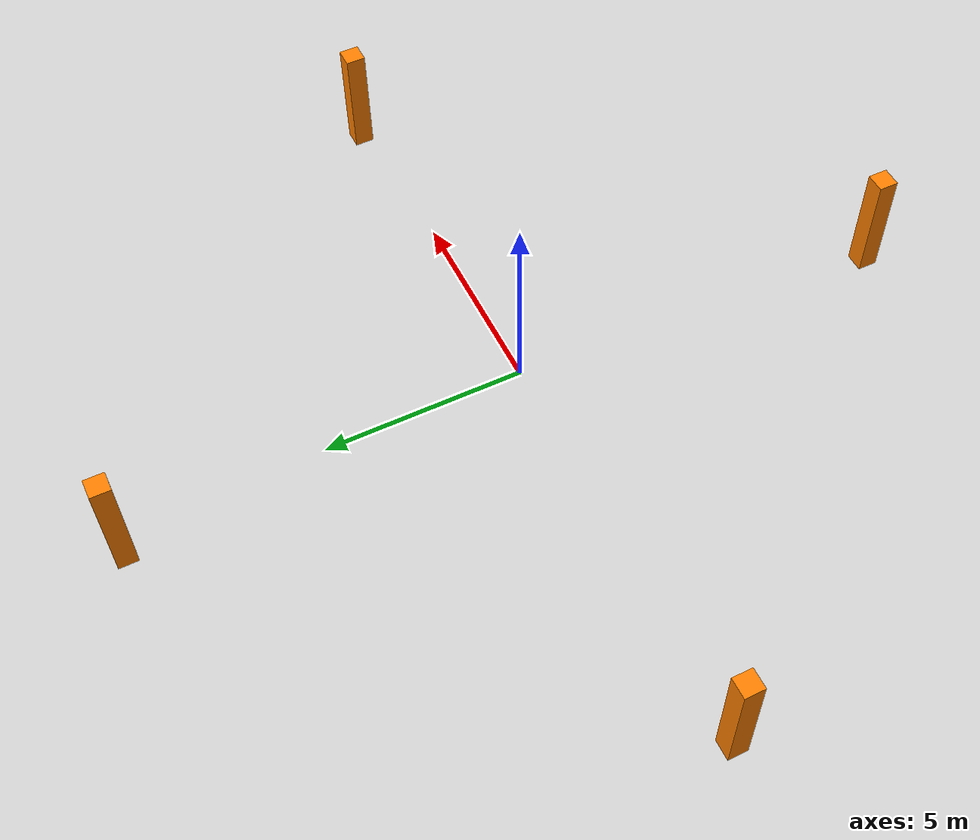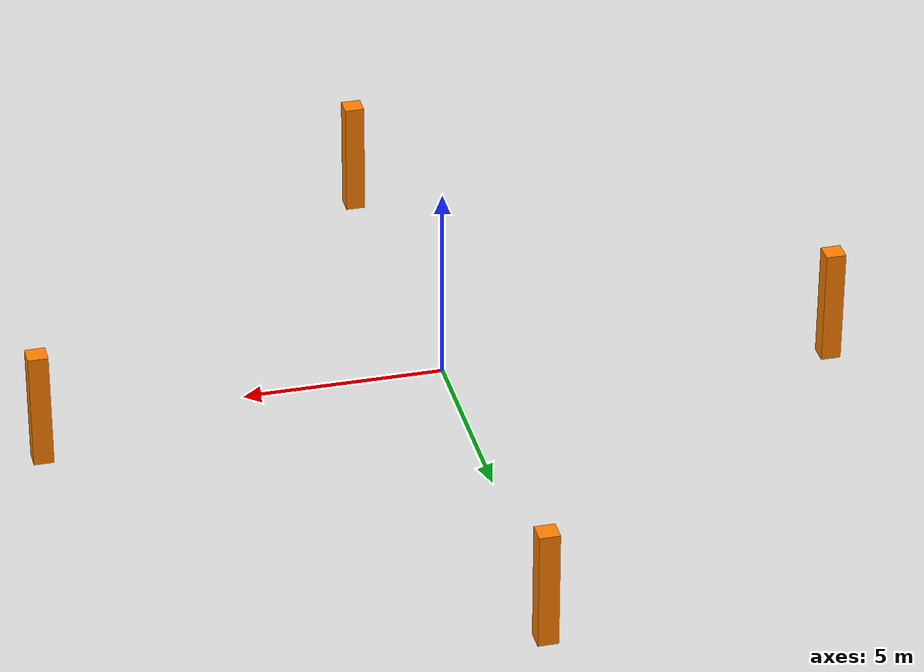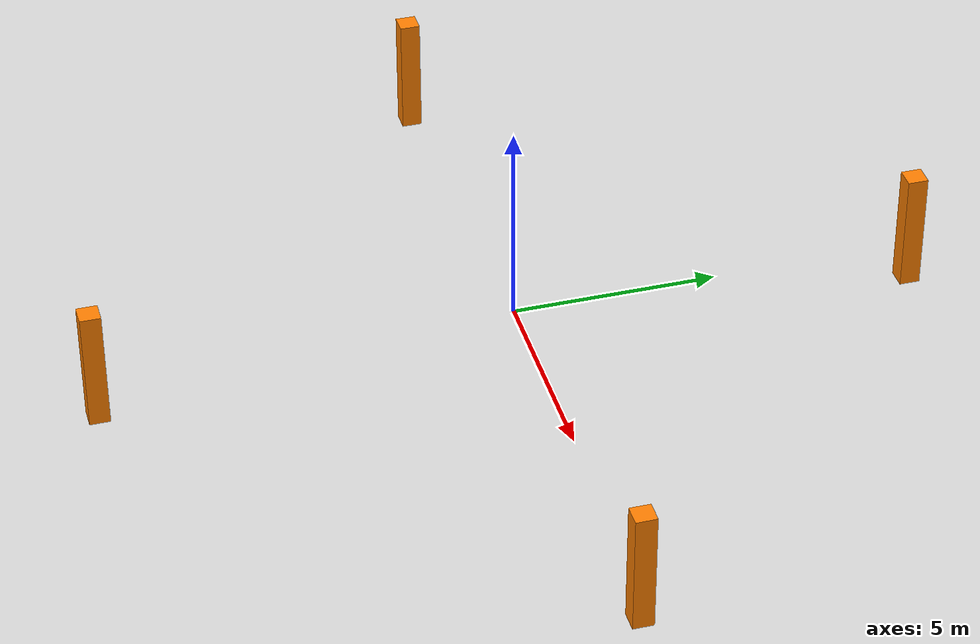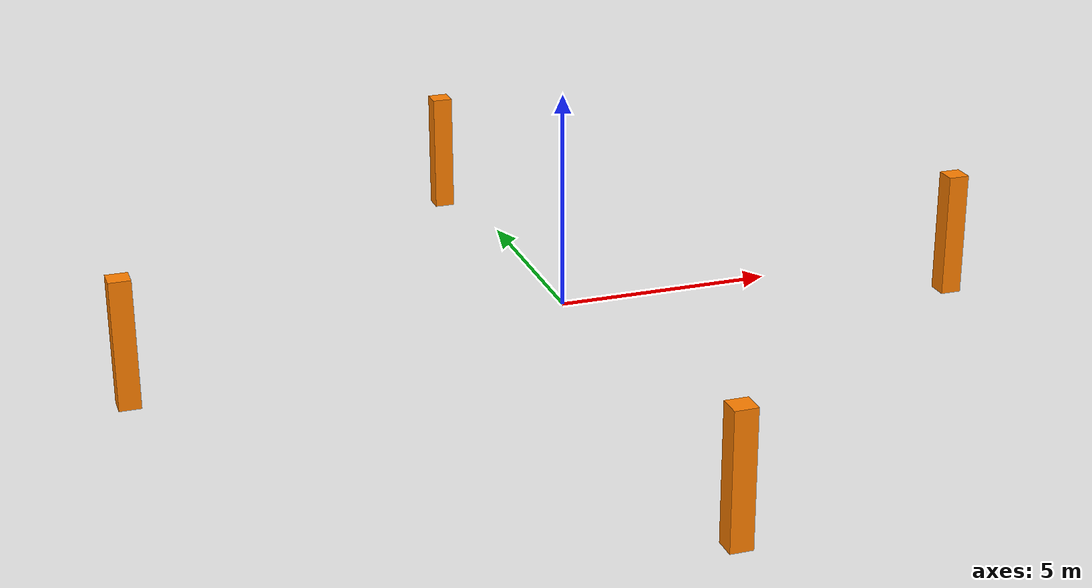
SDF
<sdf version="1.9">
 <world name="baylands">
  <plugin filename="gz-sim-physics-system" name="gz::sim::systems::Physics"/>
  <plugin filename="gz-sim-user-commands-system" name="gz::sim::systems::UserCommands"/>
  <plugin filename="gz-sim-scene-broadcaster-system" name="gz::sim::systems::SceneBroadcaster"/>
  <plugin filename="gz-sim-sensors-system" name="gz::sim::systems::Sensors">
   <render_engine>ogre2</render_engine>
  </plugin>
  <plugin filename="gz-sim-imu-system" name="gz::sim::systems::Imu"/>
  <plugin filename="gz-sim-navsat-system" name="gz::sim::systems::NavSat"/>
  <physics type="ode">
   <max_step_size>0.004</max_step_size>
   <real_time_factor>1.0</real_time_factor>
   <real_time_update_rate>250</real_time_update_rate>
  </physics>
  <gravity>0 0 -9.8</gravity>
  <magnetic_field>6e-06 2.3e-05 -4.2e-05</magnetic_field>
  <atmosphere type="adiabatic"/>
  <scene>
   <ambient>0.8 0.5 1</ambient>
   <grid>false</grid>
   <sky><clouds>true</clouds></sky>
   <shadows>1</shadows>
  </scene>
  <light name="sunUTC" type="directional">
   <pose>0 0 500 0 -0 0</pose>
   <cast_shadows>false</cast_shadows>
   <intensity>1</intensity>
   <direction>0.001 0.625 -0.78</direction>
   <diffuse>0.904 0.904 0.904 1</diffuse>
   <specular>0.271 0.271 0.271 1</specular>
   <attenuation><range>2000</range><linear>0</linear><constant>1</constant><quadratic>0</quadratic></attenuation>
  </light>
  <spherical_coordinates>
   <surface_model>EARTH_WGS84</surface_model>
   <world_frame_orientation>ENU</world_frame_orientation>
   <latitude_deg>37.412173071650805</latitude_deg>
   <longitude_deg>-121.998878727967</longitude_deg>
   <elevation>38</elevation>
  </spherical_coordinates>
  <model name="nav_marker_n">
   <static>true</static>
   <pose>0 10 0.5 0 0 0</pose>
   <link name="link">
    <collision name="col"><geometry><box><size>0.5 0.5 3.0</size></box></geometry></collision>
    <visual name="vis">
     <geometry><box><size>0.5 0.5 3.0</size></box></geometry>
     <material><ambient>1 0.5 0 1</ambient><diffuse>1 0.5 0 1</diffuse></material>
    </visual>
   </link>
  </model>
  <model name="nav_marker_s">
   <static>true</static>
   <pose>0 -10 0.5 0 0 0</pose>
   <link name="link">
    <collision name="col"><geometry><box><size>0.5 0.5 3.0</size></box></geometry></collision>
    <visual name="vis">
     <geometry><box><size>0.5 0.5 3.0</size></box></geometry>
     <material><ambient>1 0.5 0 1</ambient><diffuse>1 0.5 0 1</diffuse></material>
    </visual>
   </link>
  </model>
  <model name="nav_marker_e">
   <static>true</static>
   <pose>10 0 0.5 0 0 0</pose>
   <link name="link">
    <collision name="col"><geometry><box><size>0.5 0.5 3.0</size></box></geometry></collision>
    <visual name="vis">
     <geometry><box><size>0.5 0.5 3.0</size></box></geometry>
     <material><ambient>1 0.5 0 1</ambient><diffuse>1 0.5 0 1</diffuse></material>
    </visual>
   </link>
  </model>
  <model name="nav_marker_w">
   <static>true</static>
   <pose>-10 0 0.5 0 0 0</pose>
   <link name="link">
    <collision name="col"><geometry><box><size>0.5 0.5 3.0</size></box></geometry></collision>
    <visual name="vis">
     <geometry><box><size>0.5 0.5 3.0</size></box></geometry>
     <material><ambient>1 0.5 0 1</ambient><diffuse>1 0.5 0 1</diffuse></material>
    </visual>
   </link>
  </model>
 </world>
</sdf>
